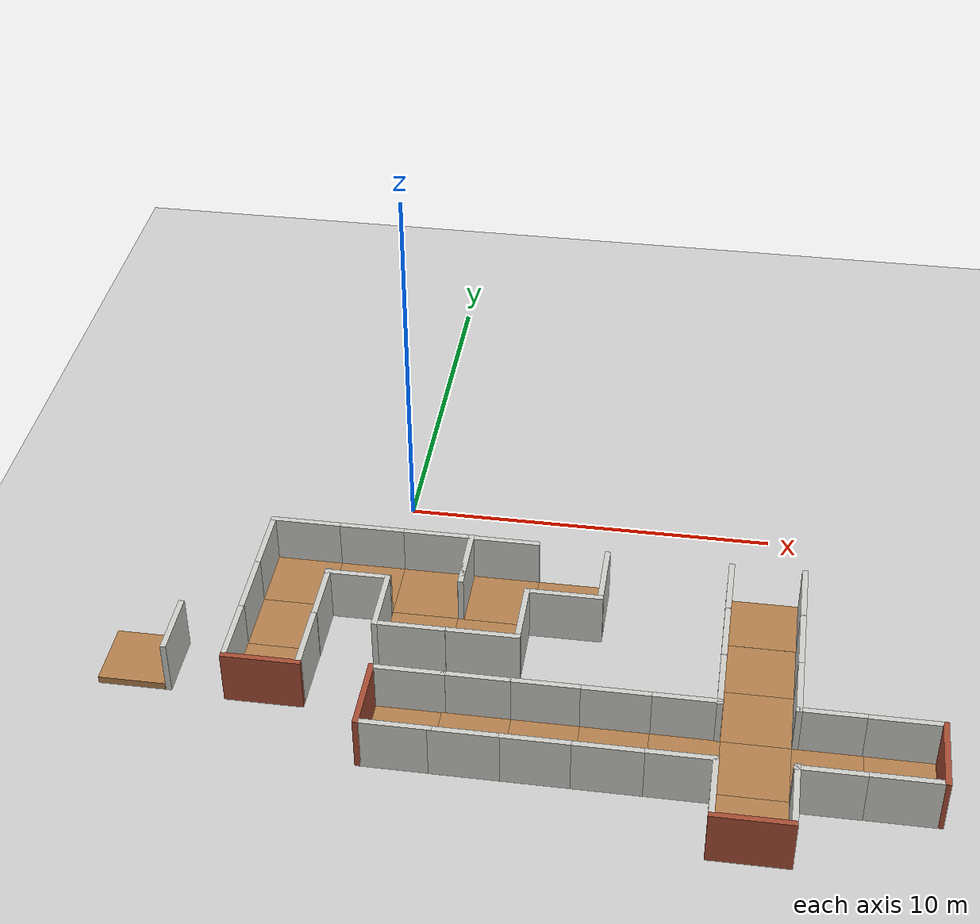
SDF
<sdf version="1.6">
 <world name="default">
  <model name="ground_plane">
   <static>1</static>
   <link name="link">
    <collision name="collision">
     <geometry><plane><normal>0 0 1</normal><size>100 100</size></plane></geometry>
     <surface><friction><ode><mu>100</mu><mu2>50</mu2></ode></friction></surface>
    </collision>
    <visual name="visual">
     <cast_shadows>0</cast_shadows>
     <geometry><plane><normal>0 0 1</normal><size>100 100</size></plane></geometry>
     <material>
      <script><uri>file://media/materials/scripts/gazebo.material</uri><name>Gazebo/Grey</name></script>
     </material>
    </visual>
   </link>
  </model>
  <model name="nerve_end">
   <pose>-2.33142 -7.13266 0 0 0 -3.14159</pose>
   <link name="Wall_0">
    <collision name="Wall_0_Collision">
     <geometry><box><size>1.76 1.75 0.2</size></box></geometry>
     <pose>0 0 0.1 0 -0 0</pose>
    </collision>
    <visual name="Wall_0_Visual">
     <pose>0 0 0.1 0 -0 0</pose>
     <geometry><box><size>1.76 1.75 0.2</size></box></geometry>
     <material>
      <script><uri>file://media/materials/scripts/gazebo.material</uri><name>Gazebo/Wood</name></script>
      <ambient>1 0.764706 0.305882 1</ambient>
     </material>
    </visual>
    <pose>-0.009 -0.064 0 0 -0 0</pose>
   </link>
   <link name="Wall_2">
    <collision name="Wall_2_Collision">
     <geometry><box><size>1.8 0.15 1.5</size></box></geometry>
     <pose>0 0 0.75 0 -0 0</pose>
    </collision>
    <visual name="Wall_2_Visual">
     <pose>0 0 0.75 0 -0 0</pose>
     <geometry><box><size>1.8 0.15 1.5</size></box></geometry>
     <material>
      <script><uri>file://media/materials/scripts/gazebo.material</uri><name>Gazebo/CeilingTiled</name></script>
      <ambient>1 0.764706 0.305882 1</ambient>
     </material>
    </visual>
    <pose>-0.95 -0.065 0 0 0 -1.5708</pose>
   </link>
   <link name="Wall_4">
    <collision name="Wall_4_Collision">
     <geometry><box><size>1.8 0.15 1.5</size></box></geometry>
     <pose>0 0 0.75 0 -0 0</pose>
    </collision>
    <visual name="Wall_4_Visual">
     <pose>0 0 0.75 0 -0 0</pose>
     <geometry><box><size>1.8 0.15 1.5</size></box></geometry>
     <material>
      <script><uri>file://media/materials/scripts/gazebo.material</uri><name>Gazebo/CeilingTiled</name></script>
      <ambient>1 0.764706 0.305882 1</ambient>
     </material>
    </visual>
    <pose>0.95 -0.065 0 0 0 -1.5708</pose>
   </link>
   <link name="Wall_6">
    <collision name="Wall_6_Collision">
     <geometry><box><size>2.05 0.15 1.5</size></box></geometry>
     <pose>0 0 0.75 0 -0 0</pose>
    </collision>
    <visual name="Wall_6_Visual">
     <pose>0 0 0.75 0 -0 0</pose>
     <geometry><box><size>2.05 0.15 1.5</size></box></geometry>
     <material>
      <script><uri>file://media/materials/scripts/gazebo.material</uri><name>Gazebo/Bricks</name></script>
      <ambient>0.996078 0.47451 0.0196078 1</ambient>
     </material>
    </visual>
    <pose>0 0.89 0 0 -0 0</pose>
   </link>
   <static>1</static>
  </model>
  <model name="nerve_straight_4">
   <pose>-2.32642 -5.32807 0 0 -0 0</pose>
   <link name="Wall_0">
    <collision name="Wall_0_Collision">
     <geometry><box><size>1.76 1.75 0.2</size></box></geometry>
     <pose>0 0 0.1 0 -0 0</pose>
    </collision>
    <visual name="Wall_0_Visual">
     <pose>0 0 0.1 0 -0 0</pose>
     <geometry><box><size>1.76 1.75 0.2</size></box></geometry>
     <material>
      <script><uri>file://media/materials/scripts/gazebo.material</uri><name>Gazebo/Wood</name></script>
      <ambient>1 0.764706 0.305882 1</ambient>
     </material>
    </visual>
    <pose>0.005 -0.002 0 0 -0 3.14159</pose>
   </link>
   <link name="Wall_2">
    <collision name="Wall_2_Collision">
     <geometry><box><size>1.75 0.15 1.5</size></box></geometry>
     <pose>0 0 0.75 0 -0 0</pose>
    </collision>
    <visual name="Wall_2_Visual">
     <pose>0 0 0.75 0 -0 0</pose>
     <geometry><box><size>1.75 0.15 1.5</size></box></geometry>
     <material>
      <script><uri>file://media/materials/scripts/gazebo.material</uri><name>Gazebo/CeilingTiled</name></script>
      <ambient>1 0.764706 0.305882 1</ambient>
     </material>
    </visual>
    <pose>-0.955 0.002 0 0 0 -1.5708</pose>
   </link>
   <link name="Wall_4">
    <collision name="Wall_4_Collision">
     <geometry><box><size>1.75 0.15 1.5</size></box></geometry>
     <pose>0 0 0.75 0 -0 0</pose>
    </collision>
    <visual name="Wall_4_Visual">
     <pose>0 0 0.75 0 -0 0</pose>
     <geometry><box><size>1.75 0.15 1.5</size></box></geometry>
     <material>
      <script><uri>file://media/materials/scripts/gazebo.material</uri><name>Gazebo/CeilingTiled</name></script>
      <ambient>1 0.764706 0.305882 1</ambient>
     </material>
    </visual>
    <pose>0.955 0.002 0 0 0 -1.5708</pose>
   </link>
   <static>1</static>
  </model>
  <model name="nerve_corner_4">
   <pose>-2.40033 -3.51919 0 0 -0 0</pose>
   <link name="Wall_0">
    <collision name="Wall_0_Collision">
     <geometry><box><size>1.76 1.75 0.2</size></box></geometry>
     <pose>0 0 0.1 0 -0 0</pose>
    </collision>
    <visual name="Wall_0_Visual">
     <pose>0 0 0.1 0 -0 0</pose>
     <geometry><box><size>1.76 1.75 0.2</size></box></geometry>
     <material>
      <script><uri>file://media/materials/scripts/gazebo.material</uri><name>Gazebo/Wood</name></script>
      <ambient>1 0.764706 0.305882 1</ambient>
     </material>
    </visual>
    <pose>0.077507 -0.077007 0 0 -0 3.14159</pose>
   </link>
   <link name="Wall_2">
    <collision name="Wall_2_Collision">
     <geometry><box><size>1.75 0.15 1.5</size></box></geometry>
     <pose>0 0 0.75 0 -0 0</pose>
    </collision>
    <visual name="Wall_2_Visual">
     <pose>0 0 0.75 0 -0 0</pose>
     <geometry><box><size>1.75 0.15 1.5</size></box></geometry>
     <material>
      <script><uri>file://media/materials/scripts/gazebo.material</uri><name>Gazebo/CeilingTiled</name></script>
      <ambient>1 0.764706 0.305882 1</ambient>
     </material>
    </visual>
    <pose>-0.882493 -0.073007 0 0 0 -1.5708</pose>
   </link>
   <link name="Wall_4">
    <collision name="Wall_4_Collision">
     <geometry><box><size>1.91042 0.15 1.5</size></box></geometry>
     <pose>0 0 0.75 0 -0 0</pose>
    </collision>
    <visual name="Wall_4_Visual">
     <pose>0 0 0.75 0 -0 0</pose>
     <geometry><box><size>1.91042 0.15 1.5</size></box></geometry>
     <material>
      <script><uri>file://media/materials/scripts/gazebo.material</uri><name>Gazebo/CeilingTiled</name></script>
      <ambient>1 0.764706 0.305882 1</ambient>
     </material>
    </visual>
    <pose>-0.002284 0.876825 0 0 -0 3.1414</pose>
   </link>
   <static>1</static>
  </model>
  <model name="nerve_straight_7">
   <pose>-0.5793 -3.59925 0 0 0 -1.5708</pose>
   <link name="Wall_0">
    <collision name="Wall_0_Collision">
     <geometry><box><size>1.76 1.75 0.2</size></box></geometry>
     <pose>0 0 0.1 0 -0 0</pose>
    </collision>
    <visual name="Wall_0_Visual">
     <pose>0 0 0.1 0 -0 0</pose>
     <geometry><box><size>1.76 1.75 0.2</size></box></geometry>
     <material>
      <script><uri>file://media/materials/scripts/gazebo.material</uri><name>Gazebo/Wood</name></script>
      <ambient>1 0.764706 0.305882 1</ambient>
     </material>
    </visual>
    <pose>0.005 -0.002 0 0 -0 3.14159</pose>
   </link>
   <link name="Wall_2">
    <collision name="Wall_2_Collision">
     <geometry><box><size>1.75 0.15 1.5</size></box></geometry>
     <pose>0 0 0.75 0 -0 0</pose>
    </collision>
    <visual name="Wall_2_Visual">
     <pose>0 0 0.75 0 -0 0</pose>
     <geometry><box><size>1.75 0.15 1.5</size></box></geometry>
     <material>
      <script><uri>file://media/materials/scripts/gazebo.material</uri><name>Gazebo/CeilingTiled</name></script>
      <ambient>1 0.764706 0.305882 1</ambient>
     </material>
    </visual>
    <pose>-0.955 0.002 0 0 0 -1.5708</pose>
   </link>
   <link name="Wall_4">
    <collision name="Wall_4_Collision">
     <geometry><box><size>1.75 0.15 1.5</size></box></geometry>
     <pose>0 0 0.75 0 -0 0</pose>
    </collision>
    <visual name="Wall_4_Visual">
     <pose>0 0 0.75 0 -0 0</pose>
     <geometry><box><size>1.75 0.15 1.5</size></box></geometry>
     <material>
      <script><uri>file://media/materials/scripts/gazebo.material</uri><name>Gazebo/CeilingTiled</name></script>
      <ambient>1 0.764706 0.305882 1</ambient>
     </material>
    </visual>
    <pose>0.955 0.002 0 0 0 -1.5708</pose>
   </link>
   <static>1</static>
  </model>
  <model name="nerve_corner_5">
   <pose>1.24131 -3.5279 0 0 0 -1.5708</pose>
   <link name="Wall_0">
    <collision name="Wall_0_Collision">
     <geometry><box><size>1.76 1.75 0.2</size></box></geometry>
     <pose>0 0 0.1 0 -0 0</pose>
    </collision>
    <visual name="Wall_0_Visual">
     <pose>0 0 0.1 0 -0 0</pose>
     <geometry><box><size>1.76 1.75 0.2</size></box></geometry>
     <material>
      <script><uri>file://media/materials/scripts/gazebo.material</uri><name>Gazebo/Wood</name></script>
      <ambient>1 0.764706 0.305882 1</ambient>
     </material>
    </visual>
    <pose>0.077507 -0.077007 0 0 -0 3.14159</pose>
   </link>
   <link name="Wall_2">
    <collision name="Wall_2_Collision">
     <geometry><box><size>1.75 0.15 1.5</size></box></geometry>
     <pose>0 0 0.75 0 -0 0</pose>
    </collision>
    <visual name="Wall_2_Visual">
     <pose>0 0 0.75 0 -0 0</pose>
     <geometry><box><size>1.75 0.15 1.5</size></box></geometry>
     <material>
      <script><uri>file://media/materials/scripts/gazebo.material</uri><name>Gazebo/CeilingTiled</name></script>
      <ambient>1 0.764706 0.305882 1</ambient>
     </material>
    </visual>
    <pose>-0.882493 -0.073007 0 0 0 -1.5708</pose>
   </link>
   <link name="Wall_4">
    <collision name="Wall_4_Collision">
     <geometry><box><size>1.91042 0.15 1.5</size></box></geometry>
     <pose>0 0 0.75 0 -0 0</pose>
    </collision>
    <visual name="Wall_4_Visual">
     <pose>0 0 0.75 0 -0 0</pose>
     <geometry><box><size>1.91042 0.15 1.5</size></box></geometry>
     <material>
      <script><uri>file://media/materials/scripts/gazebo.material</uri><name>Gazebo/CeilingTiled</name></script>
      <ambient>1 0.764706 0.305882 1</ambient>
     </material>
    </visual>
    <pose>-0.002284 0.876825 0 0 -0 3.1414</pose>
   </link>
   <static>1</static>
  </model>
  <model name="nerve_corner_6">
   <pose>1.09272 -5.44009 0 0 -0 1.5708</pose>
   <link name="Wall_0">
    <collision name="Wall_0_Collision">
     <geometry><box><size>1.76 1.75 0.2</size></box></geometry>
     <pose>0 0 0.1 0 -0 0</pose>
    </collision>
    <visual name="Wall_0_Visual">
     <pose>0 0 0.1 0 -0 0</pose>
     <geometry><box><size>1.76 1.75 0.2</size></box></geometry>
     <material>
      <script><uri>file://media/materials/scripts/gazebo.material</uri><name>Gazebo/Wood</name></script>
      <ambient>1 0.764706 0.305882 1</ambient>
     </material>
    </visual>
    <pose>0.077507 -0.077007 0 0 -0 3.14159</pose>
   </link>
   <link name="Wall_2">
    <collision name="Wall_2_Collision">
     <geometry><box><size>1.75 0.15 1.5</size></box></geometry>
     <pose>0 0 0.75 0 -0 0</pose>
    </collision>
    <visual name="Wall_2_Visual">
     <pose>0 0 0.75 0 -0 0</pose>
     <geometry><box><size>1.75 0.15 1.5</size></box></geometry>
     <material>
      <script><uri>file://media/materials/scripts/gazebo.material</uri><name>Gazebo/CeilingTiled</name></script>
      <ambient>1 0.764706 0.305882 1</ambient>
     </material>
    </visual>
    <pose>-0.882493 -0.073007 0 0 0 -1.5708</pose>
   </link>
   <link name="Wall_4">
    <collision name="Wall_4_Collision">
     <geometry><box><size>1.91042 0.15 1.5</size></box></geometry>
     <pose>0 0 0.75 0 -0 0</pose>
    </collision>
    <visual name="Wall_4_Visual">
     <pose>0 0 0.75 0 -0 0</pose>
     <geometry><box><size>1.91042 0.15 1.5</size></box></geometry>
     <material>
      <script><uri>file://media/materials/scripts/gazebo.material</uri><name>Gazebo/CeilingTiled</name></script>
      <ambient>1 0.764706 0.305882 1</ambient>
     </material>
    </visual>
    <pose>-0.002284 0.876825 0 0 -0 3.1414</pose>
   </link>
   <static>1</static>
  </model>
  <model name="nerve_corner_7">
   <pose>3.00607 -3.54167 0 0 -0 0</pose>
   <link name="Wall_0">
    <collision name="Wall_0_Collision">
     <geometry><box><size>1.76 1.75 0.2</size></box></geometry>
     <pose>0 0 0.1 0 -0 0</pose>
    </collision>
    <visual name="Wall_0_Visual">
     <pose>0 0 0.1 0 -0 0</pose>
     <geometry><box><size>1.76 1.75 0.2</size></box></geometry>
     <material>
      <script><uri>file://media/materials/scripts/gazebo.material</uri><name>Gazebo/Wood</name></script>
      <ambient>1 0.764706 0.305882 1</ambient>
     </material>
    </visual>
    <pose>0.077507 -0.077007 0 0 -0 3.14159</pose>
   </link>
   <link name="Wall_2">
    <collision name="Wall_2_Collision">
     <geometry><box><size>1.75 0.15 1.5</size></box></geometry>
     <pose>0 0 0.75 0 -0 0</pose>
    </collision>
    <visual name="Wall_2_Visual">
     <pose>0 0 0.75 0 -0 0</pose>
     <geometry><box><size>1.75 0.15 1.5</size></box></geometry>
     <material>
      <script><uri>file://media/materials/scripts/gazebo.material</uri><name>Gazebo/CeilingTiled</name></script>
      <ambient>1 0.764706 0.305882 1</ambient>
     </material>
    </visual>
    <pose>-0.882493 -0.073007 0 0 0 -1.5708</pose>
   </link>
   <link name="Wall_4">
    <collision name="Wall_4_Collision">
     <geometry><box><size>1.91042 0.15 1.5</size></box></geometry>
     <pose>0 0 0.75 0 -0 0</pose>
    </collision>
    <visual name="Wall_4_Visual">
     <pose>0 0 0.75 0 -0 0</pose>
     <geometry><box><size>1.91042 0.15 1.5</size></box></geometry>
     <material>
      <script><uri>file://media/materials/scripts/gazebo.material</uri><name>Gazebo/CeilingTiled</name></script>
      <ambient>1 0.764706 0.305882 1</ambient>
     </material>
    </visual>
    <pose>-0.002284 0.876825 0 0 -0 3.1414</pose>
   </link>
   <static>1</static>
  </model>
  <model name="nerve_corner_8">
   <pose>2.996 -5.44291 0 0 0 -3.14159</pose>
   <link name="Wall_0">
    <collision name="Wall_0_Collision">
     <geometry><box><size>1.76 1.75 0.2</size></box></geometry>
     <pose>0 0 0.1 0 -0 0</pose>
    </collision>
    <visual name="Wall_0_Visual">
     <pose>0 0 0.1 0 -0 0</pose>
     <geometry><box><size>1.76 1.75 0.2</size></box></geometry>
     <material>
      <script><uri>file://media/materials/scripts/gazebo.material</uri><name>Gazebo/Wood</name></script>
      <ambient>1 0.764706 0.305882 1</ambient>
     </material>
    </visual>
    <pose>0.077507 -0.077007 0 0 -0 3.14159</pose>
   </link>
   <link name="Wall_2">
    <collision name="Wall_2_Collision">
     <geometry><box><size>1.75 0.15 1.5</size></box></geometry>
     <pose>0 0 0.75 0 -0 0</pose>
    </collision>
    <visual name="Wall_2_Visual">
     <pose>0 0 0.75 0 -0 0</pose>
     <geometry><box><size>1.75 0.15 1.5</size></box></geometry>
     <material>
      <script><uri>file://media/materials/scripts/gazebo.material</uri><name>Gazebo/CeilingTiled</name></script>
      <ambient>1 0.764706 0.305882 1</ambient>
     </material>
    </visual>
    <pose>-0.882493 -0.073007 0 0 0 -1.5708</pose>
   </link>
   <link name="Wall_4">
    <collision name="Wall_4_Collision">
     <geometry><box><size>1.91042 0.15 1.5</size></box></geometry>
     <pose>0 0 0.75 0 -0 0</pose>
    </collision>
    <visual name="Wall_4_Visual">
     <pose>0 0 0.75 0 -0 0</pose>
     <geometry><box><size>1.91042 0.15 1.5</size></box></geometry>
     <material>
      <script><uri>file://media/materials/scripts/gazebo.material</uri><name>Gazebo/CeilingTiled</name></script>
      <ambient>1 0.764706 0.305882 1</ambient>
     </material>
    </visual>
    <pose>-0.002284 0.876825 0 0 -0 3.1414</pose>
   </link>
   <static>1</static>
  </model>
  <model name="nerve_corner_8_clone">
   <pose>4.90397 -3.68998 0 0 0 -3.14159</pose>
   <link name="Wall_0">
    <collision name="Wall_0_Collision">
     <geometry><box><size>1.76 1.75 0.2</size></box></geometry>
     <pose>0 0 0.1 0 -0 0</pose>
    </collision>
    <visual name="Wall_0_Visual">
     <pose>0 0 0.1 0 -0 0</pose>
     <geometry><box><size>1.76 1.75 0.2</size></box></geometry>
     <material>
      <script><uri>file://media/materials/scripts/gazebo.material</uri><name>Gazebo/Wood</name></script>
      <ambient>1 0.764706 0.305882 1</ambient>
     </material>
    </visual>
    <pose>0.077507 -0.077007 0 0 -0 3.14159</pose>
   </link>
   <link name="Wall_2">
    <collision name="Wall_2_Collision">
     <geometry><box><size>1.75 0.15 1.5</size></box></geometry>
     <pose>0 0 0.75 0 -0 0</pose>
    </collision>
    <visual name="Wall_2_Visual">
     <pose>0 0 0.75 0 -0 0</pose>
     <geometry><box><size>1.75 0.15 1.5</size></box></geometry>
     <material>
      <script><uri>file://media/materials/scripts/gazebo.material</uri><name>Gazebo/CeilingTiled</name></script>
      <ambient>1 0.764706 0.305882 1</ambient>
     </material>
    </visual>
    <pose>-0.882493 -0.073007 0 0 0 -1.5708</pose>
   </link>
   <link name="Wall_4">
    <collision name="Wall_4_Collision">
     <geometry><box><size>1.91042 0.15 1.5</size></box></geometry>
     <pose>0 0 0.75 0 -0 0</pose>
    </collision>
    <visual name="Wall_4_Visual">
     <pose>0 0 0.75 0 -0 0</pose>
     <geometry><box><size>1.91042 0.15 1.5</size></box></geometry>
     <material>
      <script><uri>file://media/materials/scripts/gazebo.material</uri><name>Gazebo/CeilingTiled</name></script>
      <ambient>1 0.764706 0.305882 1</ambient>
     </material>
    </visual>
    <pose>-0.002284 0.876825 0 0 -0 3.1414</pose>
   </link>
   <static>1</static>
  </model>
  <model name="nerve_onewall_1_clone_0">
   <pose>-5.72359 -7.09537 0 0 0 -3.14159</pose>
   <link name="Wall_0">
    <collision name="Wall_0_Collision">
     <geometry><box><size>1.76 1.75 0.2</size></box></geometry>
     <pose>0 0 0.1 0 -0 0</pose>
    </collision>
    <visual name="Wall_0_Visual">
     <pose>0 0 0.1 0 -0 0</pose>
     <geometry><box><size>1.76 1.75 0.2</size></box></geometry>
     <material>
      <script><uri>file://media/materials/scripts/gazebo.material</uri><name>Gazebo/Wood</name></script>
      <ambient>1 0.764706 0.305882 1</ambient>
     </material>
    </visual>
    <pose>0.0775 -0.002 0 0 -0 3.14159</pose>
   </link>
   <link name="Wall_2">
    <collision name="Wall_2_Collision">
     <geometry><box><size>1.75 0.15 1.5</size></box></geometry>
     <pose>0 0 0.75 0 -0 0</pose>
    </collision>
    <visual name="Wall_2_Visual">
     <pose>0 0 0.75 0 -0 0</pose>
     <geometry><box><size>1.75 0.15 1.5</size></box></geometry>
     <material>
      <script><uri>file://media/materials/scripts/gazebo.material</uri><name>Gazebo/CeilingTiled</name></script>
      <ambient>1 0.764706 0.305882 1</ambient>
     </material>
    </visual>
    <pose>-0.8825 0.002 0 0 0 -1.5708</pose>
   </link>
   <static>1</static>
  </model>
  <model name="nerve_end_2">
   <pose>1.33899 -8.85101 0 0 -0 1.5708</pose>
   <link name="Wall_0">
    <collision name="Wall_0_Collision">
     <geometry><box><size>1.76 1.75 0.2</size></box></geometry>
     <pose>0 0 0.1 0 -0 0</pose>
    </collision>
    <visual name="Wall_0_Visual">
     <pose>0 0 0.1 0 -0 0</pose>
     <geometry><box><size>1.76 1.75 0.2</size></box></geometry>
     <material>
      <script><uri>file://media/materials/scripts/gazebo.material</uri><name>Gazebo/Wood</name></script>
      <ambient>1 0.764706 0.305882 1</ambient>
     </material>
    </visual>
    <pose>-0.009 -0.064 0 0 -0 0</pose>
   </link>
   <link name="Wall_2">
    <collision name="Wall_2_Collision">
     <geometry><box><size>1.8 0.15 1.5</size></box></geometry>
     <pose>0 0 0.75 0 -0 0</pose>
    </collision>
    <visual name="Wall_2_Visual">
     <pose>0 0 0.75 0 -0 0</pose>
     <geometry><box><size>1.8 0.15 1.5</size></box></geometry>
     <material>
      <script><uri>file://media/materials/scripts/gazebo.material</uri><name>Gazebo/CeilingTiled</name></script>
      <ambient>1 0.764706 0.305882 1</ambient>
     </material>
    </visual>
    <pose>-0.95 -0.065 0 0 0 -1.5708</pose>
   </link>
   <link name="Wall_4">
    <collision name="Wall_4_Collision">
     <geometry><box><size>1.8 0.15 1.5</size></box></geometry>
     <pose>0 0 0.75 0 -0 0</pose>
    </collision>
    <visual name="Wall_4_Visual">
     <pose>0 0 0.75 0 -0 0</pose>
     <geometry><box><size>1.8 0.15 1.5</size></box></geometry>
     <material>
      <script><uri>file://media/materials/scripts/gazebo.material</uri><name>Gazebo/CeilingTiled</name></script>
      <ambient>1 0.764706 0.305882 1</ambient>
     </material>
    </visual>
    <pose>0.95 -0.065 0 0 0 -1.5708</pose>
   </link>
   <link name="Wall_6">
    <collision name="Wall_6_Collision">
     <geometry><box><size>2.05 0.15 1.5</size></box></geometry>
     <pose>0 0 0.75 0 -0 0</pose>
    </collision>
    <visual name="Wall_6_Visual">
     <pose>0 0 0.75 0 -0 0</pose>
     <geometry><box><size>2.05 0.15 1.5</size></box></geometry>
     <material>
      <script><uri>file://media/materials/scripts/gazebo.material</uri><name>Gazebo/Bricks</name></script>
      <ambient>0.996078 0.47451 0.0196078 1</ambient>
     </material>
    </visual>
    <pose>0 0.89 0 0 -0 0</pose>
   </link>
   <static>1</static>
  </model>
  <model name="nerve_end_2_clone">
   <pose>13.571 -8.8694 0 0 0 -1.5708</pose>
   <link name="Wall_0">
    <collision name="Wall_0_Collision">
     <geometry><box><size>1.76 1.75 0.2</size></box></geometry>
     <pose>0 0 0.1 0 -0 0</pose>
    </collision>
    <visual name="Wall_0_Visual">
     <pose>0 0 0.1 0 -0 0</pose>
     <geometry><box><size>1.76 1.75 0.2</size></box></geometry>
     <material>
      <script><uri>file://media/materials/scripts/gazebo.material</uri><name>Gazebo/Wood</name></script>
      <ambient>1 0.764706 0.305882 1</ambient>
     </material>
    </visual>
    <pose>-0.009 -0.064 0 0 -0 0</pose>
   </link>
   <link name="Wall_2">
    <collision name="Wall_2_Collision">
     <geometry><box><size>1.8 0.15 1.5</size></box></geometry>
     <pose>0 0 0.75 0 -0 0</pose>
    </collision>
    <visual name="Wall_2_Visual">
     <pose>0 0 0.75 0 -0 0</pose>
     <geometry><box><size>1.8 0.15 1.5</size></box></geometry>
     <material>
      <script><uri>file://media/materials/scripts/gazebo.material</uri><name>Gazebo/CeilingTiled</name></script>
      <ambient>1 0.764706 0.305882 1</ambient>
     </material>
    </visual>
    <pose>-0.95 -0.065 0 0 0 -1.5708</pose>
   </link>
   <link name="Wall_4">
    <collision name="Wall_4_Collision">
     <geometry><box><size>1.8 0.15 1.5</size></box></geometry>
     <pose>0 0 0.75 0 -0 0</pose>
    </collision>
    <visual name="Wall_4_Visual">
     <pose>0 0 0.75 0 -0 0</pose>
     <geometry><box><size>1.8 0.15 1.5</size></box></geometry>
     <material>
      <script><uri>file://media/materials/scripts/gazebo.material</uri><name>Gazebo/CeilingTiled</name></script>
      <ambient>1 0.764706 0.305882 1</ambient>
     </material>
    </visual>
    <pose>0.95 -0.065 0 0 0 -1.5708</pose>
   </link>
   <link name="Wall_6">
    <collision name="Wall_6_Collision">
     <geometry><box><size>2.05 0.15 1.5</size></box></geometry>
     <pose>0 0 0.75 0 -0 0</pose>
    </collision>
    <visual name="Wall_6_Visual">
     <pose>0 0 0.75 0 -0 0</pose>
     <geometry><box><size>2.05 0.15 1.5</size></box></geometry>
     <material>
      <script><uri>file://media/materials/scripts/gazebo.material</uri><name>Gazebo/Bricks</name></script>
      <ambient>0.996078 0.47451 0.0196078 1</ambient>
     </material>
    </visual>
    <pose>0 0.89 0 0 -0 0</pose>
   </link>
   <static>1</static>
  </model>
  <model name="nerve_end_2_clone_0">
   <pose>10.0305 -10.6839 0 0 0 -3.14159</pose>
   <link name="Wall_0">
    <collision name="Wall_0_Collision">
     <geometry><box><size>1.76 1.75 0.2</size></box></geometry>
     <pose>0 0 0.1 0 -0 0</pose>
    </collision>
    <visual name="Wall_0_Visual">
     <pose>0 0 0.1 0 -0 0</pose>
     <geometry><box><size>1.76 1.75 0.2</size></box></geometry>
     <material>
      <script><uri>file://media/materials/scripts/gazebo.material</uri><name>Gazebo/Wood</name></script>
      <ambient>1 0.764706 0.305882 1</ambient>
     </material>
    </visual>
    <pose>-0.009 -0.064 0 0 -0 0</pose>
   </link>
   <link name="Wall_2">
    <collision name="Wall_2_Collision">
     <geometry><box><size>1.8 0.15 1.5</size></box></geometry>
     <pose>0 0 0.75 0 -0 0</pose>
    </collision>
    <visual name="Wall_2_Visual">
     <pose>0 0 0.75 0 -0 0</pose>
     <geometry><box><size>1.8 0.15 1.5</size></box></geometry>
     <material>
      <script><uri>file://media/materials/scripts/gazebo.material</uri><name>Gazebo/CeilingTiled</name></script>
      <ambient>1 0.764706 0.305882 1</ambient>
     </material>
    </visual>
    <pose>-0.95 -0.065 0 0 0 -1.5708</pose>
   </link>
   <link name="Wall_4">
    <collision name="Wall_4_Collision">
     <geometry><box><size>1.8 0.15 1.5</size></box></geometry>
     <pose>0 0 0.75 0 -0 0</pose>
    </collision>
    <visual name="Wall_4_Visual">
     <pose>0 0 0.75 0 -0 0</pose>
     <geometry><box><size>1.8 0.15 1.5</size></box></geometry>
     <material>
      <script><uri>file://media/materials/scripts/gazebo.material</uri><name>Gazebo/CeilingTiled</name></script>
      <ambient>1 0.764706 0.305882 1</ambient>
     </material>
    </visual>
    <pose>0.95 -0.065 0 0 0 -1.5708</pose>
   </link>
   <link name="Wall_6">
    <collision name="Wall_6_Collision">
     <geometry><box><size>2.05 0.15 1.5</size></box></geometry>
     <pose>0 0 0.75 0 -0 0</pose>
    </collision>
    <visual name="Wall_6_Visual">
     <pose>0 0 0.75 0 -0 0</pose>
     <geometry><box><size>2.05 0.15 1.5</size></box></geometry>
     <material>
      <script><uri>file://media/materials/scripts/gazebo.material</uri><name>Gazebo/Bricks</name></script>
      <ambient>0.996078 0.47451 0.0196078 1</ambient>
     </material>
    </visual>
    <pose>0 0.89 0 0 -0 0</pose>
   </link>
   <static>1</static>
  </model>
  <model name="nerve_straight_12_clone_1_clone_clone_1">
   <pose>10.0198 -3.63279 0 0 -0 3.14159</pose>
   <link name="Wall_0">
    <collision name="Wall_0_Collision">
     <geometry><box><size>1.76 1.75 0.2</size></box></geometry>
     <pose>0 0 0.1 0 -0 0</pose>
    </collision>
    <visual name="Wall_0_Visual">
     <pose>0 0 0.1 0 -0 0</pose>
     <geometry><box><size>1.76 1.75 0.2</size></box></geometry>
     <material>
      <script><uri>file://media/materials/scripts/gazebo.material</uri><name>Gazebo/Wood</name></script>
      <ambient>1 0.764706 0.305882 1</ambient>
     </material>
    </visual>
    <pose>0.005 -0.002 0 0 -0 3.14159</pose>
   </link>
   <link name="Wall_2">
    <collision name="Wall_2_Collision">
     <geometry><box><size>1.75 0.15 1.5</size></box></geometry>
     <pose>0 0 0.75 0 -0 0</pose>
    </collision>
    <visual name="Wall_2_Visual">
     <pose>0 0 0.75 0 -0 0</pose>
     <geometry><box><size>1.75 0.15 1.5</size></box></geometry>
     <material>
      <script><uri>file://media/materials/scripts/gazebo.material</uri><name>Gazebo/CeilingTiled</name></script>
      <ambient>1 0.764706 0.305882 1</ambient>
     </material>
    </visual>
    <pose>-0.955 0.002 0 0 0 -1.5708</pose>
   </link>
   <link name="Wall_4">
    <collision name="Wall_4_Collision">
     <geometry><box><size>1.75 0.15 1.5</size></box></geometry>
     <pose>0 0 0.75 0 -0 0</pose>
    </collision>
    <visual name="Wall_4_Visual">
     <pose>0 0 0.75 0 -0 0</pose>
     <geometry><box><size>1.75 0.15 1.5</size></box></geometry>
     <material>
      <script><uri>file://media/materials/scripts/gazebo.material</uri><name>Gazebo/CeilingTiled</name></script>
      <ambient>1 0.764706 0.305882 1</ambient>
     </material>
    </visual>
    <pose>0.955 0.002 0 0 0 -1.5708</pose>
   </link>
   <static>1</static>
  </model>
  <model name="nerve_straight_12_clone_1_clone_clone_2">
   <pose>10.0191 -5.38374 0 0 -0 3.14159</pose>
   <link name="Wall_0">
    <collision name="Wall_0_Collision">
     <geometry><box><size>1.76 1.75 0.2</size></box></geometry>
     <pose>0 0 0.1 0 -0 0</pose>
    </collision>
    <visual name="Wall_0_Visual">
     <pose>0 0 0.1 0 -0 0</pose>
     <geometry><box><size>1.76 1.75 0.2</size></box></geometry>
     <material>
      <script><uri>file://media/materials/scripts/gazebo.material</uri><name>Gazebo/Wood</name></script>
      <ambient>1 0.764706 0.305882 1</ambient>
     </material>
    </visual>
    <pose>0.005 -0.002 0 0 -0 3.14159</pose>
   </link>
   <link name="Wall_2">
    <collision name="Wall_2_Collision">
     <geometry><box><size>1.75 0.15 1.5</size></box></geometry>
     <pose>0 0 0.75 0 -0 0</pose>
    </collision>
    <visual name="Wall_2_Visual">
     <pose>0 0 0.75 0 -0 0</pose>
     <geometry><box><size>1.75 0.15 1.5</size></box></geometry>
     <material>
      <script><uri>file://media/materials/scripts/gazebo.material</uri><name>Gazebo/CeilingTiled</name></script>
      <ambient>1 0.764706 0.305882 1</ambient>
     </material>
    </visual>
    <pose>-0.955 0.002 0 0 0 -1.5708</pose>
   </link>
   <link name="Wall_4">
    <collision name="Wall_4_Collision">
     <geometry><box><size>1.75 0.15 1.5</size></box></geometry>
     <pose>0 0 0.75 0 -0 0</pose>
    </collision>
    <visual name="Wall_4_Visual">
     <pose>0 0 0.75 0 -0 0</pose>
     <geometry><box><size>1.75 0.15 1.5</size></box></geometry>
     <material>
      <script><uri>file://media/materials/scripts/gazebo.material</uri><name>Gazebo/CeilingTiled</name></script>
      <ambient>1 0.764706 0.305882 1</ambient>
     </material>
    </visual>
    <pose>0.955 0.002 0 0 0 -1.5708</pose>
   </link>
   <static>1</static>
  </model>
  <model name="nerve_straight_12_clone_1_clone_clone_3">
   <pose>8.27264 -8.85141 0 0 -0 1.57079</pose>
   <link name="Wall_0">
    <collision name="Wall_0_Collision">
     <geometry><box><size>1.76 1.75 0.2</size></box></geometry>
     <pose>0 0 0.1 0 -0 0</pose>
    </collision>
    <visual name="Wall_0_Visual">
     <pose>0 0 0.1 0 -0 0</pose>
     <geometry><box><size>1.76 1.75 0.2</size></box></geometry>
     <material>
      <script><uri>file://media/materials/scripts/gazebo.material</uri><name>Gazebo/Wood</name></script>
      <ambient>1 0.764706 0.305882 1</ambient>
     </material>
    </visual>
    <pose>0.005 -0.002 0 0 -0 3.14159</pose>
   </link>
   <link name="Wall_2">
    <collision name="Wall_2_Collision">
     <geometry><box><size>1.75 0.15 1.5</size></box></geometry>
     <pose>0 0 0.75 0 -0 0</pose>
    </collision>
    <visual name="Wall_2_Visual">
     <pose>0 0 0.75 0 -0 0</pose>
     <geometry><box><size>1.75 0.15 1.5</size></box></geometry>
     <material>
      <script><uri>file://media/materials/scripts/gazebo.material</uri><name>Gazebo/CeilingTiled</name></script>
      <ambient>1 0.764706 0.305882 1</ambient>
     </material>
    </visual>
    <pose>-0.955 0.002 0 0 0 -1.5708</pose>
   </link>
   <link name="Wall_4">
    <collision name="Wall_4_Collision">
     <geometry><box><size>1.75 0.15 1.5</size></box></geometry>
     <pose>0 0 0.75 0 -0 0</pose>
    </collision>
    <visual name="Wall_4_Visual">
     <pose>0 0 0.75 0 -0 0</pose>
     <geometry><box><size>1.75 0.15 1.5</size></box></geometry>
     <material>
      <script><uri>file://media/materials/scripts/gazebo.material</uri><name>Gazebo/CeilingTiled</name></script>
      <ambient>1 0.764706 0.305882 1</ambient>
     </material>
    </visual>
    <pose>0.955 0.002 0 0 0 -1.5708</pose>
   </link>
   <static>1</static>
  </model>
  <model name="nerve_platform_1">
   <pose>10.0224 -8.86715 0 0 -0 0</pose>
   <link name="Wall_6">
    <collision name="Wall_6_Collision">
     <geometry><box><size>1.76 1.75 0.2</size></box></geometry>
     <pose>0 0 0.1 0 -0 0</pose>
    </collision>
    <visual name="Wall_6_Visual">
     <pose>0 0 0.1 0 -0 0</pose>
     <geometry><box><size>1.76 1.75 0.2</size></box></geometry>
     <material>
      <script><uri>file://media/materials/scripts/gazebo.material</uri><name>Gazebo/Wood</name></script>
      <ambient>1 0.764706 0.305882 1</ambient>
     </material>
    </visual>
    <pose>0 0 0 0 -0 1.5708</pose>
   </link>
   <static>1</static>
  </model>
  <model name="nerve_straight_12_clone_1_clone_clone_3_clone">
   <pose>11.7655 -8.86888 0 0 -0 1.57079</pose>
   <link name="Wall_0">
    <collision name="Wall_0_Collision">
     <geometry><box><size>1.76 1.75 0.2</size></box></geometry>
     <pose>0 0 0.1 0 -0 0</pose>
    </collision>
    <visual name="Wall_0_Visual">
     <pose>0 0 0.1 0 -0 0</pose>
     <geometry><box><size>1.76 1.75 0.2</size></box></geometry>
     <material>
      <script><uri>file://media/materials/scripts/gazebo.material</uri><name>Gazebo/Wood</name></script>
      <ambient>1 0.764706 0.305882 1</ambient>
     </material>
    </visual>
    <pose>0.005 -0.002 0 0 -0 3.14159</pose>
   </link>
   <link name="Wall_2">
    <collision name="Wall_2_Collision">
     <geometry><box><size>1.75 0.15 1.5</size></box></geometry>
     <pose>0 0 0.75 0 -0 0</pose>
    </collision>
    <visual name="Wall_2_Visual">
     <pose>0 0 0.75 0 -0 0</pose>
     <geometry><box><size>1.75 0.15 1.5</size></box></geometry>
     <material>
      <script><uri>file://media/materials/scripts/gazebo.material</uri><name>Gazebo/CeilingTiled</name></script>
      <ambient>1 0.764706 0.305882 1</ambient>
     </material>
    </visual>
    <pose>-0.955 0.002 0 0 0 -1.5708</pose>
   </link>
   <link name="Wall_4">
    <collision name="Wall_4_Collision">
     <geometry><box><size>1.75 0.15 1.5</size></box></geometry>
     <pose>0 0 0.75 0 -0 0</pose>
    </collision>
    <visual name="Wall_4_Visual">
     <pose>0 0 0.75 0 -0 0</pose>
     <geometry><box><size>1.75 0.15 1.5</size></box></geometry>
     <material>
      <script><uri>file://media/materials/scripts/gazebo.material</uri><name>Gazebo/CeilingTiled</name></script>
      <ambient>1 0.764706 0.305882 1</ambient>
     </material>
    </visual>
    <pose>0.955 0.002 0 0 0 -1.5708</pose>
   </link>
   <static>1</static>
  </model>
  <model name="nerve_straight_12_clone_1_clone_clone_3_clone_0">
   <pose>10.0172 -7.11671 0 0 -0 3.14159</pose>
   <link name="Wall_0">
    <collision name="Wall_0_Collision">
     <geometry><box><size>1.76 1.75 0.2</size></box></geometry>
     <pose>0 0 0.1 0 -0 0</pose>
    </collision>
    <visual name="Wall_0_Visual">
     <pose>0 0 0.1 0 -0 0</pose>
     <geometry><box><size>1.76 1.75 0.2</size></box></geometry>
     <material>
      <script><uri>file://media/materials/scripts/gazebo.material</uri><name>Gazebo/Wood</name></script>
      <ambient>1 0.764706 0.305882 1</ambient>
     </material>
    </visual>
    <pose>0.005 -0.002 0 0 -0 3.14159</pose>
   </link>
   <link name="Wall_2">
    <collision name="Wall_2_Collision">
     <geometry><box><size>1.75 0.15 1.5</size></box></geometry>
     <pose>0 0 0.75 0 -0 0</pose>
    </collision>
    <visual name="Wall_2_Visual">
     <pose>0 0 0.75 0 -0 0</pose>
     <geometry><box><size>1.75 0.15 1.5</size></box></geometry>
     <material>
      <script><uri>file://media/materials/scripts/gazebo.material</uri><name>Gazebo/CeilingTiled</name></script>
      <ambient>1 0.764706 0.305882 1</ambient>
     </material>
    </visual>
    <pose>-0.955 0.002 0 0 0 -1.5708</pose>
   </link>
   <link name="Wall_4">
    <collision name="Wall_4_Collision">
     <geometry><box><size>1.75 0.15 1.5</size></box></geometry>
     <pose>0 0 0.75 0 -0 0</pose>
    </collision>
    <visual name="Wall_4_Visual">
     <pose>0 0 0.75 0 -0 0</pose>
     <geometry><box><size>1.75 0.15 1.5</size></box></geometry>
     <material>
      <script><uri>file://media/materials/scripts/gazebo.material</uri><name>Gazebo/CeilingTiled</name></script>
      <ambient>1 0.764706 0.305882 1</ambient>
     </material>
    </visual>
    <pose>0.955 0.002 0 0 0 -1.5708</pose>
   </link>
   <static>1</static>
  </model>
  <model name="nerve_straight_12_clone_1_clone_clone_3_clone_1">
   <pose>6.53662 -8.85185 0 0 -0 1.57079</pose>
   <link name="Wall_0">
    <collision name="Wall_0_Collision">
     <geometry><box><size>1.76 1.75 0.2</size></box></geometry>
     <pose>0 0 0.1 0 -0 0</pose>
    </collision>
    <visual name="Wall_0_Visual">
     <pose>0 0 0.1 0 -0 0</pose>
     <geometry><box><size>1.76 1.75 0.2</size></box></geometry>
     <material>
      <script><uri>file://media/materials/scripts/gazebo.material</uri><name>Gazebo/Wood</name></script>
      <ambient>1 0.764706 0.305882 1</ambient>
     </material>
    </visual>
    <pose>0.005 -0.002 0 0 -0 3.14159</pose>
   </link>
   <link name="Wall_2">
    <collision name="Wall_2_Collision">
     <geometry><box><size>1.75 0.15 1.5</size></box></geometry>
     <pose>0 0 0.75 0 -0 0</pose>
    </collision>
    <visual name="Wall_2_Visual">
     <pose>0 0 0.75 0 -0 0</pose>
     <geometry><box><size>1.75 0.15 1.5</size></box></geometry>
     <material>
      <script><uri>file://media/materials/scripts/gazebo.material</uri><name>Gazebo/CeilingTiled</name></script>
      <ambient>1 0.764706 0.305882 1</ambient>
     </material>
    </visual>
    <pose>-0.955 0.002 0 0 0 -1.5708</pose>
   </link>
   <link name="Wall_4">
    <collision name="Wall_4_Collision">
     <geometry><box><size>1.75 0.15 1.5</size></box></geometry>
     <pose>0 0 0.75 0 -0 0</pose>
    </collision>
    <visual name="Wall_4_Visual">
     <pose>0 0 0.75 0 -0 0</pose>
     <geometry><box><size>1.75 0.15 1.5</size></box></geometry>
     <material>
      <script><uri>file://media/materials/scripts/gazebo.material</uri><name>Gazebo/CeilingTiled</name></script>
      <ambient>1 0.764706 0.305882 1</ambient>
     </material>
    </visual>
    <pose>0.955 0.002 0 0 0 -1.5708</pose>
   </link>
   <static>1</static>
  </model>
  <model name="nerve_straight_12_clone_1_clone_clone_3_clone_2">
   <pose>4.79429 -8.85019 0 0 -0 1.57079</pose>
   <link name="Wall_0">
    <collision name="Wall_0_Collision">
     <geometry><box><size>1.76 1.75 0.2</size></box></geometry>
     <pose>0 0 0.1 0 -0 0</pose>
    </collision>
    <visual name="Wall_0_Visual">
     <pose>0 0 0.1 0 -0 0</pose>
     <geometry><box><size>1.76 1.75 0.2</size></box></geometry>
     <material>
      <script><uri>file://media/materials/scripts/gazebo.material</uri><name>Gazebo/Wood</name></script>
      <ambient>1 0.764706 0.305882 1</ambient>
     </material>
    </visual>
    <pose>0.005 -0.002 0 0 -0 3.14159</pose>
   </link>
   <link name="Wall_2">
    <collision name="Wall_2_Collision">
     <geometry><box><size>1.75 0.15 1.5</size></box></geometry>
     <pose>0 0 0.75 0 -0 0</pose>
    </collision>
    <visual name="Wall_2_Visual">
     <pose>0 0 0.75 0 -0 0</pose>
     <geometry><box><size>1.75 0.15 1.5</size></box></geometry>
     <material>
      <script><uri>file://media/materials/scripts/gazebo.material</uri><name>Gazebo/CeilingTiled</name></script>
      <ambient>1 0.764706 0.305882 1</ambient>
     </material>
    </visual>
    <pose>-0.955 0.002 0 0 0 -1.5708</pose>
   </link>
   <link name="Wall_4">
    <collision name="Wall_4_Collision">
     <geometry><box><size>1.75 0.15 1.5</size></box></geometry>
     <pose>0 0 0.75 0 -0 0</pose>
    </collision>
    <visual name="Wall_4_Visual">
     <pose>0 0 0.75 0 -0 0</pose>
     <geometry><box><size>1.75 0.15 1.5</size></box></geometry>
     <material>
      <script><uri>file://media/materials/scripts/gazebo.material</uri><name>Gazebo/CeilingTiled</name></script>
      <ambient>1 0.764706 0.305882 1</ambient>
     </material>
    </visual>
    <pose>0.955 0.002 0 0 0 -1.5708</pose>
   </link>
   <static>1</static>
  </model>
  <model name="nerve_straight_12_clone_1_clone_clone_3_clone_2_clone">
   <pose>3.06851 -8.85063 0 0 -0 1.57079</pose>
   <link name="Wall_0">
    <collision name="Wall_0_Collision">
     <geometry><box><size>1.76 1.75 0.2</size></box></geometry>
     <pose>0 0 0.1 0 -0 0</pose>
    </collision>
    <visual name="Wall_0_Visual">
     <pose>0 0 0.1 0 -0 0</pose>
     <geometry><box><size>1.76 1.75 0.2</size></box></geometry>
     <material>
      <script><uri>file://media/materials/scripts/gazebo.material</uri><name>Gazebo/Wood</name></script>
      <ambient>1 0.764706 0.305882 1</ambient>
     </material>
    </visual>
    <pose>0.005 -0.002 0 0 -0 3.14159</pose>
   </link>
   <link name="Wall_2">
    <collision name="Wall_2_Collision">
     <geometry><box><size>1.75 0.15 1.5</size></box></geometry>
     <pose>0 0 0.75 0 -0 0</pose>
    </collision>
    <visual name="Wall_2_Visual">
     <pose>0 0 0.75 0 -0 0</pose>
     <geometry><box><size>1.75 0.15 1.5</size></box></geometry>
     <material>
      <script><uri>file://media/materials/scripts/gazebo.material</uri><name>Gazebo/CeilingTiled</name></script>
      <ambient>1 0.764706 0.305882 1</ambient>
     </material>
    </visual>
    <pose>-0.955 0.002 0 0 0 -1.5708</pose>
   </link>
   <link name="Wall_4">
    <collision name="Wall_4_Collision">
     <geometry><box><size>1.75 0.15 1.5</size></box></geometry>
     <pose>0 0 0.75 0 -0 0</pose>
    </collision>
    <visual name="Wall_4_Visual">
     <pose>0 0 0.75 0 -0 0</pose>
     <geometry><box><size>1.75 0.15 1.5</size></box></geometry>
     <material>
      <script><uri>file://media/materials/scripts/gazebo.material</uri><name>Gazebo/CeilingTiled</name></script>
      <ambient>1 0.764706 0.305882 1</ambient>
     </material>
    </visual>
    <pose>0.955 0.002 0 0 0 -1.5708</pose>
   </link>
   <static>1</static>
  </model>
 </world>
</sdf>
